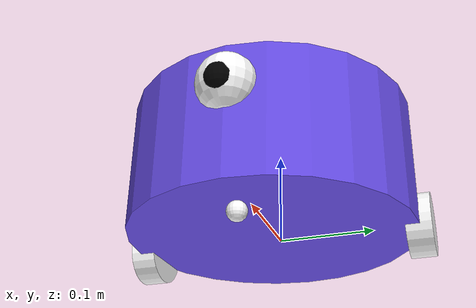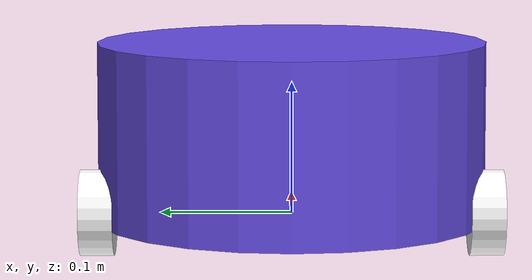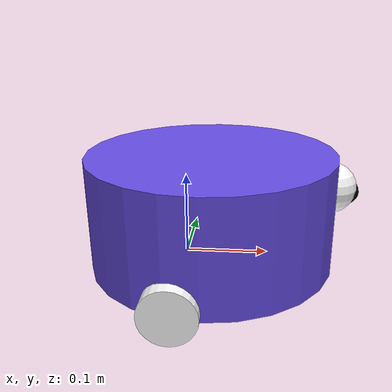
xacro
<?xml version="1.0" ?>
<robot name='robot' xmlns:xacro="http://ros.org/wiki/xacro">

    <xacro:include filename="$(find robot_description)/urdf/gazebo.urdf.xacro" />
    <!--xacro:include filename="$(find robot_description)/urdf/lidar.urdf.xacro" /-->
    <!--xacro:include filename="$(find robot_description)/urdf/depth.urdf.xacro" /-->

    <xacro:property name="chassis_radius" value="0.15"/>
    <xacro:property name="chassis_height" value="0.138"/>
    <xacro:property name="wheel_radius" value="0.033"/>
    <xacro:property name="wheel_thickness" value="0.026"/>
    <xacro:property name="wheel_mass" value="0.05"/>
    <xacro:property name="wheel_offset_x" value="0.176"/>
    <xacro:property name="wheel_offset_y" value="0.1485"/>
    <xacro:property name="wheel_offset_z" value="0.01"/>
    <xacro:property name="caster_wheel_radius" value="0.01"/>
    <xacro:property name="caster_wheel_mass" value="0.01"/>
    <xacro:property name="caster_wheel_offset_x" value="0.315"/>
    <xacro:property name="caster_wheel_offset_z" value="${wheel_offset_z - wheel_radius + caster_wheel_radius}"/>
    <xacro:property name="mass" value="1.0"/>

    <xacro:property name="eye_radius" value="0.03"/>
    <xacro:property name="eye_offset_x" value="0.350"/>
    <xacro:property name="eye_offset_y" value="0.0"/>
    <xacro:property name="eye_offset_z" value="${chassis_height/2 + eye_radius}"/>

    <xacro:property name="eye_radius2" value="0.015"/>
    <xacro:property name="eye_offset_x2" value="0.368"/>
    <xacro:property name="eye_offset_y2" value="0.0"/>
    <xacro:property name="eye_offset_z2" value="${chassis_height/2 * 1.15 + eye_radius2}"/>

    <material name="white">
        <color rgba="1 1 1 1" />
    </material>

    <material name="purple">
        <color rgba="0.4 0.3 0.9 1"/>
    </material>

    <material name="orange">
        <color rgba="1 0.3 0.1 1"/>
    </material>

    <material name="blue">
        <color rgba="0.2 0.2 1 1"/>
    </material>

    <material name="black">
        <color rgba="0 0 0 1"/>
    </material>

    <material name="red">
        <color rgba="1 0 0 1"/>
    </material>

    <link name="base_link">
    </link>

    <link name="base_footprint">
    </link>

    <joint name="base_footprint_joint" type="fixed">
        <parent link="base_link"/>
        <child link="base_footprint"/>
        <origin xyz="0 0 -0.138" rpy="0 0 0"/>
    </joint>

    <joint name="chassis_joint" type="fixed">
        <parent link="base_link"/>
        <child link="chassis"/>
        <origin xyz="${-wheel_offset_x} 0 ${-wheel_offset_z}"/>
    </joint>

    <link name='chassis'>
        <inertial>
            <origin xyz="${chassis_height*1.5} 0 ${chassis_height/2}" rpy="0 0 0"/>
            <mass value="${mass}" />
            <inertia ixx="${(1/12) * mass * (3*chassis_radius*chassis_radius + chassis_height*chassis_height)}" ixy="0.0" ixz="0.0"
                     iyy="${(1/12) * mass * (3*chassis_radius*chassis_radius + chassis_height*chassis_height)}" iyz="0.0"
                     izz="${(1/2) * mass * (chassis_radius*chassis_radius)}" />
        </inertial>
        <visual>
            <origin xyz="${chassis_height*1.5} 0 ${chassis_height/2}"/>
            <geometry>
                <cylinder radius="${chassis_radius}" length="${chassis_height}"/>
            </geometry>
            <material name="purple"/>
        </visual>
        <collision>
            <origin xyz="${chassis_height*1.5} 0 ${chassis_height/2}"/>
            <geometry>
                 <cylinder radius="${chassis_radius}" length="${chassis_height}"/>
            </geometry>
        </collision>
    </link>

    <joint name="left_wheel_joint" type="continuous">
        <parent link="base_link"/>
        <child link="left_wheel"/>
        <origin xyz="0 ${wheel_offset_y} 0" rpy="-${pi/2} 0 0" />
        <axis xyz="0 0 1"/>
    </joint>

    <link name="left_wheel">
        <visual>
            <geometry>
                <cylinder radius="${wheel_radius}" length="${wheel_thickness}"/>
            </geometry>
            <material name="white"/>
        </visual>
        <collision>
            <geometry>
                <sphere radius="${wheel_radius}"/>
            </geometry>
        </collision>
        <inertial>
            <origin xyz="0 0 0" rpy="0 0 0"/>
            <mass value="${wheel_mass}" />
            <inertia ixx="${(1/12) * wheel_mass * (3*wheel_radius*wheel_radius + wheel_thickness*wheel_thickness)}" ixy="0.0" ixz="0.0"
                     iyy="${(1/12) * wheel_mass * (3*wheel_radius*wheel_radius + wheel_thickness*wheel_thickness)}" iyz="0.0"
                     izz="${(1/2) * wheel_mass * (wheel_radius*wheel_radius)}" />
        </inertial>
    </link>

    <gazebo reference="left_wheel">
        <material>Gazebo/White</material>
    </gazebo>

    <joint name="right_wheel_joint" type="continuous">
        <parent link="base_link"/>
        <child link="right_wheel"/>
        <origin xyz="0 ${-wheel_offset_y} 0" rpy="${pi/2} 0 0" />
        <axis xyz="0 0 -1"/>
    </joint>

    <link name="right_wheel">
        <visual>
            <geometry>
                <cylinder radius="${wheel_radius}" length="${wheel_thickness}"/>
            </geometry>
            <material name="white"/>
        </visual>
        <collision>
            <geometry>
                <sphere radius="${wheel_radius}"/>
            </geometry>
        </collision>
        <inertial>
            <origin xyz="0 0 0" rpy="0 0 0"/>
            <mass value="${wheel_mass}" />
            <inertia ixx="${(1/12) * wheel_mass * (3*wheel_radius*wheel_radius + wheel_thickness*wheel_thickness)}" ixy="0.0" ixz="0.0"
                     iyy="${(1/12) * wheel_mass * (3*wheel_radius*wheel_radius + wheel_thickness*wheel_thickness)}" iyz="0.0"
                     izz="${(1/2) * wheel_mass * (wheel_radius*wheel_radius)}" />
        </inertial>
    </link>

    <gazebo reference="right_wheel">
        <material>Gazebo/White</material>
    </gazebo>

    <joint name="caster_wheel_joint" type="fixed">
        <parent link="chassis"/>
        <child link="caster_wheel"/>
        <origin xyz="${caster_wheel_offset_x} 0 ${caster_wheel_offset_z}"/>
    </joint>

    <link name="caster_wheel">
        <visual>
            <geometry>
                <sphere radius="${caster_wheel_radius}"/>
            </geometry>
            <material name="white"/>
        </visual>
        <collision>
            <geometry>
                <sphere radius="${caster_wheel_radius}"/>
            </geometry>
        </collision>
        <inertial>
            <origin xyz="0 0 0" rpy="0 0 0"/>
            <mass value="${caster_wheel_mass}" />
            <inertia ixx="${(2/5) * caster_wheel_mass * (caster_wheel_radius*caster_wheel_radius)}" ixy="0.0" ixz="0.0"
                     iyy="${(2/5) * caster_wheel_mass * (caster_wheel_radius*caster_wheel_radius)}" iyz="0.0"
                     izz="${(2/5) * caster_wheel_mass * (caster_wheel_radius*caster_wheel_radius)}" />
        </inertial>
    </link>

    <gazebo reference="caster_wheel">
        <material>Gazebo/White</material>
        <mu1 value="0.001"/>
        <mu2 value="0.001"/>
    </gazebo>

    <joint name="eye_joint" type="fixed">
        <parent link="chassis"/>
        <child link="eye"/>
        <origin xyz="${eye_offset_x} ${eye_offset_y} ${eye_offset_z}"/>
    </joint>

    <link name="eye">
        <visual>
            <geometry>
                <sphere radius="${eye_radius}"/>
            </geometry>
            <material name="white"/>
        </visual>
        <collision>
            <geometry>
                <sphere radius="${eye_radius}"/>
            </geometry>
        </collision>
        <inertial>
            <origin xyz="0 0 0" rpy="0 0 0"/>
            <mass value="0.01" />
            <inertia ixx="${(2/5) * 0.01 * (eye_radius*eye_radius)}" ixy="0.0" ixz="0.0"
                     iyy="${(2/5) * 0.01 * (eye_radius*eye_radius)}" iyz="0.0"
                     izz="${(2/5) * 0.01 * (eye_radius*eye_radius)}" />
        </inertial>
    </link>

    <gazebo reference="eye">
        <material>Gazebo/White</material>
    </gazebo>

    <joint name="eye_joint2" type="fixed">
        <parent link="chassis"/>
        <child link="eye2"/>
        <origin xyz="${eye_offset_x2} ${eye_offset_y2} ${eye_offset_z2}"/>
    </joint>

    <link name="eye2">
        <visual>
            <geometry>
                <sphere radius="${eye_radius2}"/>
            </geometry>
            <material name="black"/>
        </visual>
        <collision>
            <geometry>
                <sphere radius="${eye_radius2}"/>
            </geometry>
        </collision>
        <inertial>
            <origin xyz="0 0 0" rpy="0 0 0"/>
            <mass value="0.01" />
            <inertia ixx="${(2/5) * 0.01 * (eye_radius2*eye_radius2)}" ixy="0.0" ixz="0.0"
                     iyy="${(2/5) * 0.01 * (eye_radius2*eye_radius2)}" iyz="0.0"
                     izz="${(2/5) * 0.01 * (eye_radius2*eye_radius2)}" />
        </inertial>
    </link>

    <gazebo reference="eye2">
        <material>Gazebo/Black</material>
    </gazebo>

</robot>
